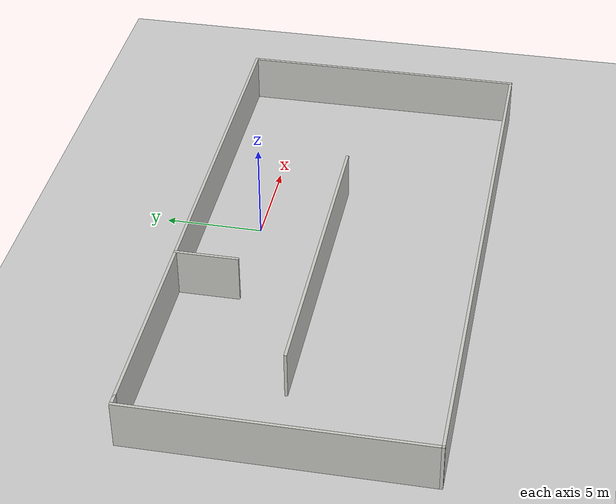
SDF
<sdf version="1.6">
 <world name="default">
  <light name="sun" type="directional">
   <pose>0 0 10 0 -0 0</pose>
   <diffuse>0.8 0.8 0.8 1</diffuse>
   <specular>0.1 0.1 0.1 1</specular>
   <attenuation>
    <range>1000</range>
    <constant>0.9</constant>
    <linear>0.01</linear>
    <quadratic>0.001</quadratic>
   </attenuation>
   <direction>-0.5 0.5 -1</direction>
  </light>
  <model name="ground_plane">
   <static>1</static>
   <link name="link">
    <collision name="collision">
     <geometry><plane><normal>0 0 1</normal><size>100 100</size></plane></geometry>
     <surface><friction><ode><mu>100</mu><mu2>50</mu2></ode></friction></surface>
    </collision>
    <visual name="visual">
     <cast_shadows>0</cast_shadows>
     <geometry><plane><normal>0 0 1</normal><size>100 100</size></plane></geometry>
     <material>
      <script><uri>file://media/materials/scripts/gazebo.material</uri><name>Gazebo/Grey</name></script>
     </material>
    </visual>
   </link>
  </model>
  <gravity>0 0 -9.8</gravity>
  <magnetic_field>6e-06 2.3e-05 -4.2e-05</magnetic_field>
  <atmosphere type="adiabatic"/>
  <physics name="default_physics" default="0" type="ode">
   <max_step_size>0.001</max_step_size>
   <real_time_factor>1</real_time_factor>
   <real_time_update_rate>1000</real_time_update_rate>
  </physics>
  <scene><ambient>0.4 0.4 0.4 1</ambient><background>0.7 0.7 0.7 1</background><shadows>1</shadows></scene>
  <spherical_coordinates>
   <surface_model>EARTH_WGS84</surface_model>
   <latitude_deg>0</latitude_deg>
   <longitude_deg>0</longitude_deg>
   <elevation>0</elevation>
   <heading_deg>0</heading_deg>
  </spherical_coordinates>
  <model name="iwt">
   <pose>-1.87403 -4.31709 0 0 -0 0</pose>
   <link name="Wall_10">
    <collision name="Wall_10_Collision">
     <geometry><box><size>14.75 0.15 2.5</size></box></geometry>
     <pose>0 0 1.25 0 -0 0</pose>
    </collision>
    <visual name="Wall_10_Visual">
     <pose>0 0 1.25 0 -0 0</pose>
     <geometry><box><size>14.75 0.15 2.5</size></box></geometry>
     <material>
      <script><uri>file://media/materials/scripts/gazebo.material</uri><name>Gazebo/CeilingTiled</name></script>
      <ambient>1 1 1 1</ambient>
     </material>
    </visual>
    <pose>-14.55 -0.004954 0 0 -0 1.5708</pose>
   </link>
   <link name="Wall_11">
    <collision name="Wall_11_Collision">
     <geometry><box><size>0.65 0.15 2.5</size></box></geometry>
     <pose>0 0 1.25 0 -0 0</pose>
    </collision>
    <visual name="Wall_11_Visual">
     <pose>0 0 1.25 0 -0 0</pose>
     <geometry><box><size>0.65 0.15 2.5</size></box></geometry>
     <material>
      <script><uri>file://media/materials/scripts/gazebo.material</uri><name>Gazebo/CeilingTiled</name></script>
      <ambient>1 1 1 1</ambient>
     </material>
    </visual>
    <pose>-14.3 7.29505 0 0 -0 0</pose>
   </link>
   <link name="Wall_17">
    <collision name="Wall_17_Collision">
     <geometry><box><size>16 0.15 2.5</size></box></geometry>
     <pose>0 0 1.25 0 -0 0</pose>
    </collision>
    <visual name="Wall_17_Visual">
     <pose>0 0 1.25 0 -0 0</pose>
     <geometry><box><size>16 0.15 2.5</size></box></geometry>
     <material>
      <script><uri>file://media/materials/scripts/gazebo.material</uri><name>Gazebo/CeilingTiled</name></script>
      <ambient>1 1 1 1</ambient>
     </material>
    </visual>
    <pose>-2.12058 0.465939 0 0 -0 0</pose>
   </link>
   <link name="Wall_20">
    <collision name="Wall_20_Collision">
     <geometry><box><size>3.25 0.15 2.5</size></box></geometry>
     <pose>0 0 1.25 0 -0 0</pose>
    </collision>
    <visual name="Wall_20_Visual">
     <pose>0 0 1.25 0 -0 0</pose>
     <geometry><box><size>3.25 0.15 2.5</size></box></geometry>
     <material>
      <script><uri>file://media/materials/scripts/gazebo.material</uri><name>Gazebo/CeilingTiled</name></script>
      <ambient>1 1 1 1</ambient>
     </material>
    </visual>
    <pose>-3.6718 5.75495 0 0 0 -1.5708</pose>
   </link>
   <link name="Wall_3">
    <collision name="Wall_3_Collision">
     <geometry><box><size>28.75 0.15 2.5</size></box></geometry>
     <pose>0 0 1.25 0 -0 0</pose>
    </collision>
    <visual name="Wall_3_Visual">
     <pose>0 0 1.25 0 -0 0</pose>
     <geometry><box><size>28.75 0.15 2.5</size></box></geometry>
     <material>
      <script><uri>file://media/materials/scripts/gazebo.material</uri><name>Gazebo/CeilingTiled</name></script>
      <ambient>1 1 1 1</ambient>
     </material>
    </visual>
    <pose>0.25 7.29505 0 0 -0 0</pose>
   </link>
   <link name="Wall_8">
    <collision name="Wall_8_Collision">
     <geometry><box><size>14.75 0.15 2.5</size></box></geometry>
     <pose>0 0 1.25 0 -0 0</pose>
    </collision>
    <visual name="Wall_8_Visual">
     <pose>0 0 1.25 0 -0 0</pose>
     <geometry><box><size>14.75 0.15 2.5</size></box></geometry>
     <material>
      <script><uri>file://media/materials/scripts/gazebo.material</uri><name>Gazebo/CeilingTiled</name></script>
      <ambient>1 1 1 1</ambient>
     </material>
    </visual>
    <pose>14.55 -0.004954 0 0 0 -1.5708</pose>
   </link>
   <link name="Wall_9">
    <collision name="Wall_9_Collision">
     <geometry><box><size>29.25 0.15 2.5</size></box></geometry>
     <pose>0 0 1.25 0 -0 0</pose>
    </collision>
    <visual name="Wall_9_Visual">
     <pose>0 0 1.25 0 -0 0</pose>
     <geometry><box><size>29.25 0.15 2.5</size></box></geometry>
     <material>
      <script><uri>file://media/materials/scripts/gazebo.material</uri><name>Gazebo/CeilingTiled</name></script>
      <ambient>1 1 1 1</ambient>
     </material>
    </visual>
    <pose>0 -7.30495 0 0 -0 3.14159</pose>
   </link>
   <static>1</static>
  </model>
 </world>
</sdf>
